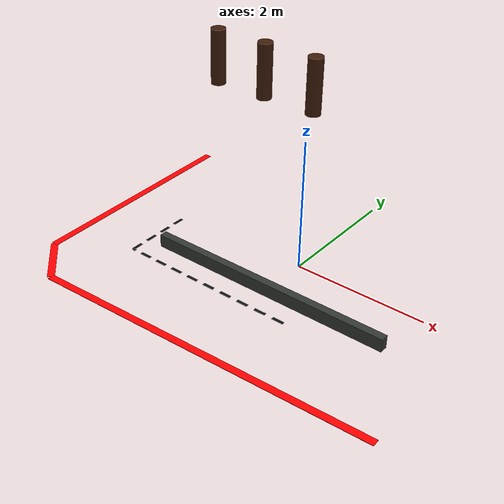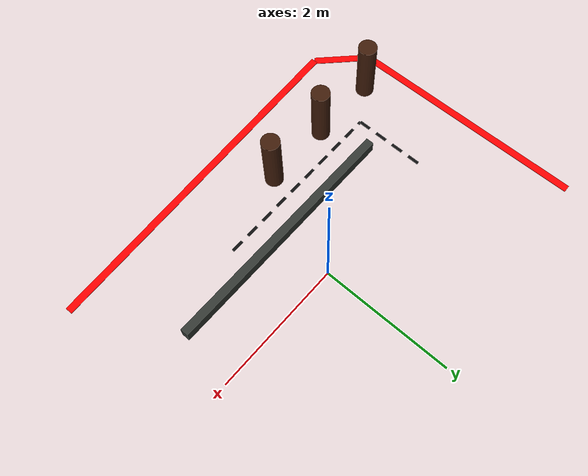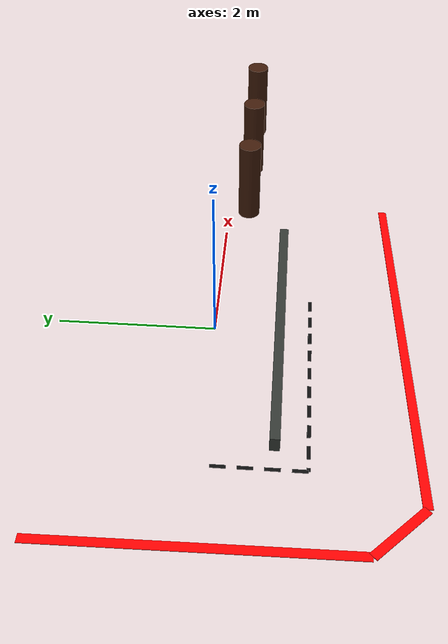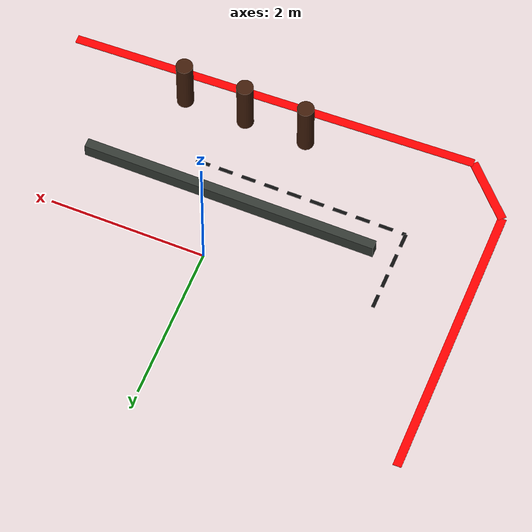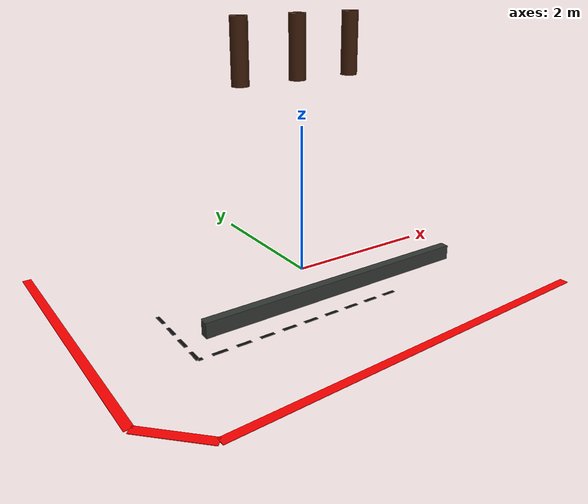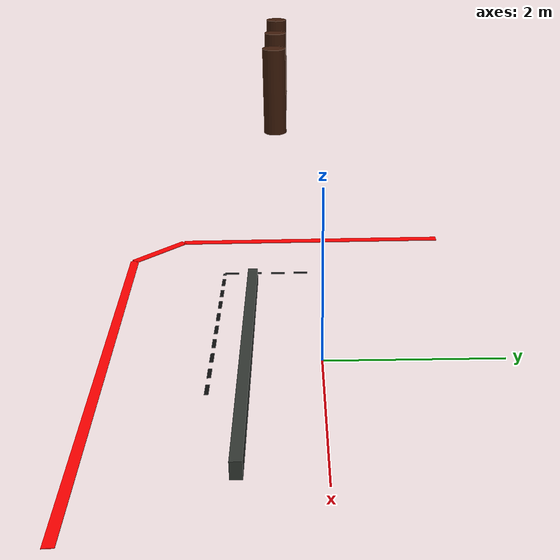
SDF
<sdf version="1.6">
 <world name="transformer_iec_world">
  <model name="bushing_0">
   <static>true</static>
   <pose>-1.12500 -0.45000 3.05500 0.00000 0.00000 0.00000</pose>
   <link name="link">
    <collision name="collision">
     <geometry><cylinder><radius>0.10000</radius><length>0.75000</length></cylinder></geometry>
    </collision>
    <visual name="visual">
     <geometry><cylinder><radius>0.10000</radius><length>0.75000</length></cylinder></geometry>
     <material><ambient>0.25 0.11 0.04 1</ambient><diffuse>0.25 0.11 0.04 1</diffuse></material>
    </visual>
   </link>
  </model>
  <model name="bushing_1">
   <static>true</static>
   <pose>-0.37500 -0.45000 3.05500 0.00000 0.00000 0.00000</pose>
   <link name="link">
    <collision name="collision">
     <geometry><cylinder><radius>0.10000</radius><length>0.75000</length></cylinder></geometry>
    </collision>
    <visual name="visual">
     <geometry><cylinder><radius>0.10000</radius><length>0.75000</length></cylinder></geometry>
     <material><ambient>0.25 0.11 0.04 1</ambient><diffuse>0.25 0.11 0.04 1</diffuse></material>
    </visual>
   </link>
  </model>
  <model name="bushing_2">
   <static>true</static>
   <pose>0.37500 -0.45000 3.05500 0.00000 0.00000 0.00000</pose>
   <link name="link">
    <collision name="collision">
     <geometry><cylinder><radius>0.10000</radius><length>0.75000</length></cylinder></geometry>
    </collision>
    <visual name="visual">
     <geometry><cylinder><radius>0.10000</radius><length>0.75000</length></cylinder></geometry>
     <material><ambient>0.25 0.11 0.04 1</ambient><diffuse>0.25 0.11 0.04 1</diffuse></material>
    </visual>
   </link>
  </model>
  <model name="base_rail_left">
   <static>true</static>
   <pose>0.00000 -0.82000 0.10000 0 0 0</pose>
   <link name="link">
    <collision name="collision"><geometry><box><size>3.78000 0.12000 0.20000</size></box></geometry></collision>
    <visual name="visual">
     <geometry><box><size>3.78000 0.12000 0.20000</size></box></geometry>
     <material><ambient>0.20 0.22 0.20 1</ambient><diffuse>0.20 0.22 0.20 1</diffuse></material>
    </visual>
   </link>
  </model>
  <model name="radiating_boundary_0">
   <static>true</static>
   <pose>-2.15000 -1.11000 0.00300 0 0 1.57080</pose>
   <link name="link">
    <visual name="visual">
     <cast_shadows>false</cast_shadows>
     <geometry><box><size>0.18000 0.04500 0.00600</size></box></geometry>
     <material>
      <ambient>0.05 0.05 0.05 1</ambient>
      <diffuse>0.05 0.05 0.05 1</diffuse>
      <emissive>0.05 0.05 0.05 1</emissive>
     </material>
    </visual>
   </link>
  </model>
  <model name="radiating_boundary_1">
   <static>true</static>
   <pose>-2.15000 -0.81000 0.00300 0 0 1.57080</pose>
   <link name="link">
    <visual name="visual">
     <cast_shadows>false</cast_shadows>
     <geometry><box><size>0.18000 0.04500 0.00600</size></box></geometry>
     <material>
      <ambient>0.05 0.05 0.05 1</ambient>
      <diffuse>0.05 0.05 0.05 1</diffuse>
      <emissive>0.05 0.05 0.05 1</emissive>
     </material>
    </visual>
   </link>
  </model>
  <model name="radiating_boundary_2">
   <static>true</static>
   <pose>-2.15000 -0.51000 0.00300 0 0 1.57080</pose>
   <link name="link">
    <visual name="visual">
     <cast_shadows>false</cast_shadows>
     <geometry><box><size>0.18000 0.04500 0.00600</size></box></geometry>
     <material>
      <ambient>0.05 0.05 0.05 1</ambient>
      <diffuse>0.05 0.05 0.05 1</diffuse>
      <emissive>0.05 0.05 0.05 1</emissive>
     </material>
    </visual>
   </link>
  </model>
  <model name="radiating_boundary_3">
   <static>true</static>
   <pose>-2.15000 -0.21000 0.00300 0 0 1.57080</pose>
   <link name="link">
    <visual name="visual">
     <cast_shadows>false</cast_shadows>
     <geometry><box><size>0.18000 0.04500 0.00600</size></box></geometry>
     <material>
      <ambient>0.05 0.05 0.05 1</ambient>
      <diffuse>0.05 0.05 0.05 1</diffuse>
      <emissive>0.05 0.05 0.05 1</emissive>
     </material>
    </visual>
   </link>
  </model>
  <model name="radiating_boundary_41">
   <static>true</static>
   <pose>0.51000 -1.20000 0.00300 0 0 3.14159</pose>
   <link name="link">
    <visual name="visual">
     <cast_shadows>false</cast_shadows>
     <geometry><box><size>0.18000 0.04500 0.00600</size></box></geometry>
     <material>
      <ambient>0.05 0.05 0.05 1</ambient>
      <diffuse>0.05 0.05 0.05 1</diffuse>
      <emissive>0.05 0.05 0.05 1</emissive>
     </material>
    </visual>
   </link>
  </model>
  <model name="radiating_boundary_42">
   <static>true</static>
   <pose>0.21000 -1.20000 0.00300 0 0 3.14159</pose>
   <link name="link">
    <visual name="visual">
     <cast_shadows>false</cast_shadows>
     <geometry><box><size>0.18000 0.04500 0.00600</size></box></geometry>
     <material>
      <ambient>0.05 0.05 0.05 1</ambient>
      <diffuse>0.05 0.05 0.05 1</diffuse>
      <emissive>0.05 0.05 0.05 1</emissive>
     </material>
    </visual>
   </link>
  </model>
  <model name="radiating_boundary_43">
   <static>true</static>
   <pose>-0.09000 -1.20000 0.00300 0 0 3.14159</pose>
   <link name="link">
    <visual name="visual">
     <cast_shadows>false</cast_shadows>
     <geometry><box><size>0.18000 0.04500 0.00600</size></box></geometry>
     <material>
      <ambient>0.05 0.05 0.05 1</ambient>
      <diffuse>0.05 0.05 0.05 1</diffuse>
      <emissive>0.05 0.05 0.05 1</emissive>
     </material>
    </visual>
   </link>
  </model>
  <model name="radiating_boundary_44">
   <static>true</static>
   <pose>-0.39000 -1.20000 0.00300 0 0 3.14159</pose>
   <link name="link">
    <visual name="visual">
     <cast_shadows>false</cast_shadows>
     <geometry><box><size>0.18000 0.04500 0.00600</size></box></geometry>
     <material>
      <ambient>0.05 0.05 0.05 1</ambient>
      <diffuse>0.05 0.05 0.05 1</diffuse>
      <emissive>0.05 0.05 0.05 1</emissive>
     </material>
    </visual>
   </link>
  </model>
  <model name="radiating_boundary_45">
   <static>true</static>
   <pose>-0.69000 -1.20000 0.00300 0 0 3.14159</pose>
   <link name="link">
    <visual name="visual">
     <cast_shadows>false</cast_shadows>
     <geometry><box><size>0.18000 0.04500 0.00600</size></box></geometry>
     <material>
      <ambient>0.05 0.05 0.05 1</ambient>
      <diffuse>0.05 0.05 0.05 1</diffuse>
      <emissive>0.05 0.05 0.05 1</emissive>
     </material>
    </visual>
   </link>
  </model>
  <model name="radiating_boundary_46">
   <static>true</static>
   <pose>-0.99000 -1.20000 0.00300 0 0 3.14159</pose>
   <link name="link">
    <visual name="visual">
     <cast_shadows>false</cast_shadows>
     <geometry><box><size>0.18000 0.04500 0.00600</size></box></geometry>
     <material>
      <ambient>0.05 0.05 0.05 1</ambient>
      <diffuse>0.05 0.05 0.05 1</diffuse>
      <emissive>0.05 0.05 0.05 1</emissive>
     </material>
    </visual>
   </link>
  </model>
  <model name="radiating_boundary_47">
   <static>true</static>
   <pose>-1.29000 -1.20000 0.00300 0 0 3.14159</pose>
   <link name="link">
    <visual name="visual">
     <cast_shadows>false</cast_shadows>
     <geometry><box><size>0.18000 0.04500 0.00600</size></box></geometry>
     <material>
      <ambient>0.05 0.05 0.05 1</ambient>
      <diffuse>0.05 0.05 0.05 1</diffuse>
      <emissive>0.05 0.05 0.05 1</emissive>
     </material>
    </visual>
   </link>
  </model>
  <model name="radiating_boundary_48">
   <static>true</static>
   <pose>-1.59000 -1.20000 0.00300 0 0 3.14159</pose>
   <link name="link">
    <visual name="visual">
     <cast_shadows>false</cast_shadows>
     <geometry><box><size>0.18000 0.04500 0.00600</size></box></geometry>
     <material>
      <ambient>0.05 0.05 0.05 1</ambient>
      <diffuse>0.05 0.05 0.05 1</diffuse>
      <emissive>0.05 0.05 0.05 1</emissive>
     </material>
    </visual>
   </link>
  </model>
  <model name="radiating_boundary_49">
   <static>true</static>
   <pose>-1.89000 -1.20000 0.00300 0 0 3.14159</pose>
   <link name="link">
    <visual name="visual">
     <cast_shadows>false</cast_shadows>
     <geometry><box><size>0.18000 0.04500 0.00600</size></box></geometry>
     <material>
      <ambient>0.05 0.05 0.05 1</ambient>
      <diffuse>0.05 0.05 0.05 1</diffuse>
      <emissive>0.05 0.05 0.05 1</emissive>
     </material>
    </visual>
   </link>
  </model>
  <model name="radiating_boundary_50">
   <static>true</static>
   <pose>-2.12500 -1.20000 0.00300 0 0 3.14159</pose>
   <link name="link">
    <visual name="visual">
     <cast_shadows>false</cast_shadows>
     <geometry><box><size>0.05000 0.04500 0.00600</size></box></geometry>
     <material>
      <ambient>0.05 0.05 0.05 1</ambient>
      <diffuse>0.05 0.05 0.05 1</diffuse>
      <emissive>0.05 0.05 0.05 1</emissive>
     </material>
    </visual>
   </link>
  </model>
  <model name="robot_path_0">
   <static>true</static>
   <pose>-3.17500 -0.05000 0.00400 0 0 1.58468</pose>
   <link name="link">
    <visual name="visual">
     <cast_shadows>false</cast_shadows>
     <geometry><box><size>3.60035 0.11000 0.00800</size></box></geometry>
     <material><ambient>1 0 0 1</ambient><diffuse>1 0 0 1</diffuse><emissive>1 0 0 1</emissive></material>
    </visual>
   </link>
  </model>
  <model name="robot_path_6">
   <static>true</static>
   <pose>0.05000 -2.35000 0.00400 0 0 -3.10315</pose>
   <link name="link">
    <visual name="visual">
     <cast_shadows>false</cast_shadows>
     <geometry><box><size>5.20384 0.11000 0.00800</size></box></geometry>
     <material><ambient>1 0 0 1</ambient><diffuse>1 0 0 1</diffuse><emissive>1 0 0 1</emissive></material>
    </visual>
   </link>
  </model>
  <model name="robot_path_7">
   <static>true</static>
   <pose>-2.85000 -2.15000 0.00400 0 0 2.35619</pose>
   <link name="link">
    <visual name="visual">
     <cast_shadows>false</cast_shadows>
     <geometry><box><size>0.84853 0.11000 0.00800</size></box></geometry>
     <material><ambient>1 0 0 1</ambient><diffuse>1 0 0 1</diffuse><emissive>1 0 0 1</emissive></material>
    </visual>
   </link>
  </model>
 </world>
</sdf>
